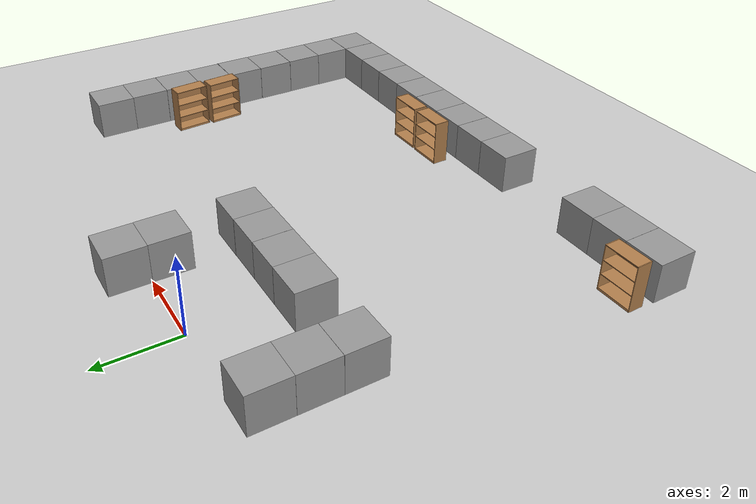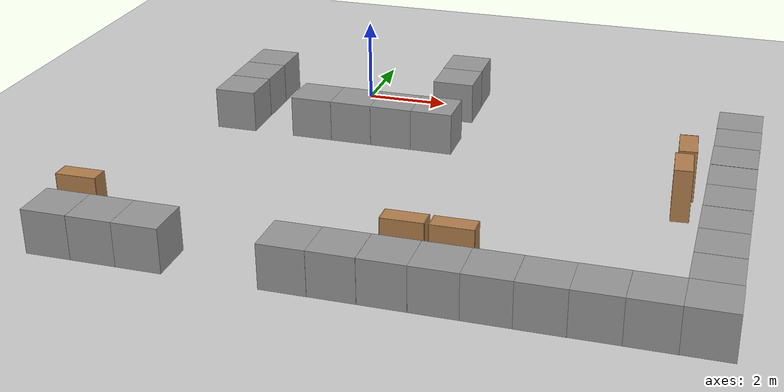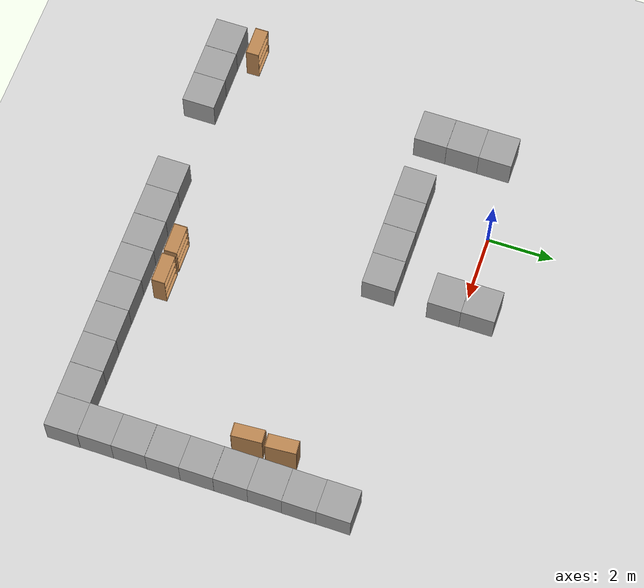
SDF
<sdf version="1.6">
 <world name="default">
  <model name="ground_plane">
   <static>1</static>
   <link name="link">
    <collision name="collision">
     <geometry><plane><normal>0 0 1</normal><size>100 100</size></plane></geometry>
     <surface><friction><ode><mu>100</mu><mu2>50</mu2></ode></friction></surface>
    </collision>
    <visual name="visual">
     <cast_shadows>0</cast_shadows>
     <geometry><plane><normal>0 0 1</normal><size>100 100</size></plane></geometry>
     <material>
      <script><uri>file://media/materials/scripts/gazebo.material</uri><name>Gazebo/Grey</name></script>
     </material>
    </visual>
   </link>
  </model>
  <model name="unit_box_0">
   <pose>9.4907 -9.4836 0.499802 -0.000397 0 0.000253</pose>
   <link name="link">
    <inertial>
     <mass>1</mass>
     <inertia>
      <ixx>0.166667</ixx>
      <ixy>0</ixy>
      <ixz>0</ixz>
      <iyy>0.166667</iyy>
      <iyz>0</iyz>
      <izz>0.166667</izz>
     </inertia>
    </inertial>
    <collision name="collision"><geometry><box><size>1 1 1</size></box></geometry></collision>
    <visual name="visual">
     <geometry><box><size>1 1 1</size></box></geometry>
     <material>
      <script><name>Gazebo/Grey</name><uri>file://media/materials/scripts/gazebo.material</uri></script>
     </material>
    </visual>
   </link>
  </model>
  <model name="unit_box_4">
   <pose>9.48293 -8.48368 0.49809 -0 0.0001 0.000262</pose>
   <link name="link">
    <inertial>
     <mass>1</mass>
     <inertia>
      <ixx>0.166667</ixx>
      <ixy>0</ixy>
      <ixz>0</ixz>
      <iyy>0.166667</iyy>
      <iyz>0</iyz>
      <izz>0.166667</izz>
     </inertia>
    </inertial>
    <collision name="collision"><geometry><box><size>1 1 1</size></box></geometry></collision>
    <visual name="visual">
     <geometry><box><size>1 1 1</size></box></geometry>
     <material>
      <script><name>Gazebo/Grey</name><uri>file://media/materials/scripts/gazebo.material</uri></script>
     </material>
    </visual>
   </link>
  </model>
  <model name="unit_box_5">
   <pose>9.48241 -7.48343 0.49912 0 -0 0.000141</pose>
   <link name="link">
    <inertial>
     <mass>1</mass>
     <inertia>
      <ixx>0.166667</ixx>
      <ixy>0</ixy>
      <ixz>0</ixz>
      <iyy>0.166667</iyy>
      <iyz>0</iyz>
      <izz>0.166667</izz>
     </inertia>
    </inertial>
    <collision name="collision"><geometry><box><size>1 1 1</size></box></geometry></collision>
    <visual name="visual">
     <geometry><box><size>1 1 1</size></box></geometry>
     <material>
      <script><name>Gazebo/Grey</name><uri>file://media/materials/scripts/gazebo.material</uri></script>
     </material>
    </visual>
   </link>
  </model>
  <model name="unit_box_6">
   <pose>9.48379 -6.48255 0.49608 0 -0 0.000235</pose>
   <link name="link">
    <inertial>
     <mass>1</mass>
     <inertia>
      <ixx>0.166667</ixx>
      <ixy>0</ixy>
      <ixz>0</ixz>
      <iyy>0.166667</iyy>
      <iyz>0</iyz>
      <izz>0.166667</izz>
     </inertia>
    </inertial>
    <collision name="collision"><geometry><box><size>1 1 1</size></box></geometry></collision>
    <visual name="visual">
     <geometry><box><size>1 1 1</size></box></geometry>
     <material>
      <script><name>Gazebo/Grey</name><uri>file://media/materials/scripts/gazebo.material</uri></script>
     </material>
    </visual>
   </link>
  </model>
  <model name="unit_box_7">
   <pose>9.48676 -5.48266 0.499798 0.000404 -0 0.000236</pose>
   <link name="link">
    <inertial>
     <mass>1</mass>
     <inertia>
      <ixx>0.166667</ixx>
      <ixy>0</ixy>
      <ixz>0</ixz>
      <iyy>0.166667</iyy>
      <iyz>0</iyz>
      <izz>0.166667</izz>
     </inertia>
    </inertial>
    <collision name="collision"><geometry><box><size>1 1 1</size></box></geometry></collision>
    <visual name="visual">
     <geometry><box><size>1 1 1</size></box></geometry>
     <material>
      <script><name>Gazebo/Grey</name><uri>file://media/materials/scripts/gazebo.material</uri></script>
     </material>
    </visual>
   </link>
  </model>
  <model name="unit_box_8">
   <pose>9.4832 -4.48215 0.49417 0.0001 -0 0.000181</pose>
   <link name="link">
    <inertial>
     <mass>1</mass>
     <inertia>
      <ixx>0.166667</ixx>
      <ixy>0</ixy>
      <ixz>0</ixz>
      <iyy>0.166667</iyy>
      <iyz>0</iyz>
      <izz>0.166667</izz>
     </inertia>
    </inertial>
    <collision name="collision"><geometry><box><size>1 1 1</size></box></geometry></collision>
    <visual name="visual">
     <geometry><box><size>1 1 1</size></box></geometry>
     <material>
      <script><name>Gazebo/Grey</name><uri>file://media/materials/scripts/gazebo.material</uri></script>
     </material>
    </visual>
   </link>
  </model>
  <model name="unit_box_9">
   <pose>9.48361 -3.48178 0.5 0 0 -6.6e-05</pose>
   <link name="link">
    <inertial>
     <mass>1</mass>
     <inertia>
      <ixx>0.166667</ixx>
      <ixy>0</ixy>
      <ixz>0</ixz>
      <iyy>0.166667</iyy>
      <iyz>0</iyz>
      <izz>0.166667</izz>
     </inertia>
    </inertial>
    <collision name="collision"><geometry><box><size>1 1 1</size></box></geometry></collision>
    <visual name="visual">
     <geometry><box><size>1 1 1</size></box></geometry>
     <material>
      <script><name>Gazebo/Grey</name><uri>file://media/materials/scripts/gazebo.material</uri></script>
     </material>
    </visual>
   </link>
  </model>
  <model name="unit_box_10">
   <pose>9.48795 -2.48152 0.49907 0 0.0001 -0.000301</pose>
   <link name="link">
    <inertial>
     <mass>1</mass>
     <inertia>
      <ixx>0.166667</ixx>
      <ixy>0</ixy>
      <ixz>0</ixz>
      <iyy>0.166667</iyy>
      <iyz>0</iyz>
      <izz>0.166667</izz>
     </inertia>
    </inertial>
    <collision name="collision"><geometry><box><size>1 1 1</size></box></geometry></collision>
    <visual name="visual">
     <geometry><box><size>1 1 1</size></box></geometry>
     <material>
      <script><name>Gazebo/Grey</name><uri>file://media/materials/scripts/gazebo.material</uri></script>
     </material>
    </visual>
   </link>
  </model>
  <model name="unit_box_11">
   <pose>9.48138 -1.4815 0.49907 0 -0.0001 -0.000273</pose>
   <link name="link">
    <inertial>
     <mass>1</mass>
     <inertia>
      <ixx>0.166667</ixx>
      <ixy>0</ixy>
      <ixz>0</ixz>
      <iyy>0.166667</iyy>
      <iyz>0</iyz>
      <izz>0.166667</izz>
     </inertia>
    </inertial>
    <collision name="collision"><geometry><box><size>1 1 1</size></box></geometry></collision>
    <visual name="visual">
     <geometry><box><size>1 1 1</size></box></geometry>
     <material>
      <script><name>Gazebo/Grey</name><uri>file://media/materials/scripts/gazebo.material</uri></script>
     </material>
    </visual>
   </link>
  </model>
  <model name="unit_box_20">
   <pose>8.49014 -9.48559 0.49912 0 -0 7.9e-05</pose>
   <link name="link">
    <inertial>
     <mass>1</mass>
     <inertia>
      <ixx>0.166667</ixx>
      <ixy>0</ixy>
      <ixz>0</ixz>
      <iyy>0.166667</iyy>
      <iyz>0</iyz>
      <izz>0.166667</izz>
     </inertia>
    </inertial>
    <collision name="collision"><geometry><box><size>1 1 1</size></box></geometry></collision>
    <visual name="visual">
     <geometry><box><size>1 1 1</size></box></geometry>
     <material>
      <script><name>Gazebo/Grey</name><uri>file://media/materials/scripts/gazebo.material</uri></script>
     </material>
    </visual>
   </link>
  </model>
  <model name="unit_box_21">
   <pose>7.48948 -9.48475 0.499757 -3e-06 -0.000475 0.000569</pose>
   <link name="link">
    <inertial>
     <mass>1</mass>
     <inertia>
      <ixx>0.166667</ixx>
      <ixy>0</ixy>
      <ixz>0</ixz>
      <iyy>0.166667</iyy>
      <iyz>0</iyz>
      <izz>0.166667</izz>
     </inertia>
    </inertial>
    <collision name="collision"><geometry><box><size>1 1 1</size></box></geometry></collision>
    <visual name="visual">
     <geometry><box><size>1 1 1</size></box></geometry>
     <material>
      <script><name>Gazebo/Grey</name><uri>file://media/materials/scripts/gazebo.material</uri></script>
     </material>
    </visual>
   </link>
  </model>
  <model name="unit_box_22">
   <pose>6.48943 -9.48753 0.499047 -1.5e-05 -0 -7.6e-05</pose>
   <link name="link">
    <inertial>
     <mass>1</mass>
     <inertia>
      <ixx>0.166667</ixx>
      <ixy>0</ixy>
      <ixz>0</ixz>
      <iyy>0.166667</iyy>
      <iyz>0</iyz>
      <izz>0.166667</izz>
     </inertia>
    </inertial>
    <collision name="collision"><geometry><box><size>1 1 1</size></box></geometry></collision>
    <visual name="visual">
     <geometry><box><size>1 1 1</size></box></geometry>
     <material>
      <script><name>Gazebo/Grey</name><uri>file://media/materials/scripts/gazebo.material</uri></script>
     </material>
    </visual>
   </link>
  </model>
  <model name="unit_box_23">
   <pose>5.48916 -9.48427 0.5 0 -0 0.000473</pose>
   <link name="link">
    <inertial>
     <mass>1</mass>
     <inertia>
      <ixx>0.166667</ixx>
      <ixy>0</ixy>
      <ixz>0</ixz>
      <iyy>0.166667</iyy>
      <iyz>0</iyz>
      <izz>0.166667</izz>
     </inertia>
    </inertial>
    <collision name="collision"><geometry><box><size>1 1 1</size></box></geometry></collision>
    <visual name="visual">
     <geometry><box><size>1 1 1</size></box></geometry>
     <material>
      <script><name>Gazebo/Grey</name><uri>file://media/materials/scripts/gazebo.material</uri></script>
     </material>
    </visual>
   </link>
  </model>
  <model name="unit_box_24">
   <pose>4.48912 -9.484 0.499802 -0.000397 -0 0.000461</pose>
   <link name="link">
    <inertial>
     <mass>1</mass>
     <inertia>
      <ixx>0.166667</ixx>
      <ixy>0</ixy>
      <ixz>0</ixz>
      <iyy>0.166667</iyy>
      <iyz>0</iyz>
      <izz>0.166667</izz>
     </inertia>
    </inertial>
    <collision name="collision"><geometry><box><size>1 1 1</size></box></geometry></collision>
    <visual name="visual">
     <geometry><box><size>1 1 1</size></box></geometry>
     <material>
      <script><name>Gazebo/Grey</name><uri>file://media/materials/scripts/gazebo.material</uri></script>
     </material>
    </visual>
   </link>
  </model>
  <model name="unit_box_25">
   <pose>3.48859 -9.48324 0.499798 -0.000404 0 -0.00034</pose>
   <link name="link">
    <inertial>
     <mass>1</mass>
     <inertia>
      <ixx>0.166667</ixx>
      <ixy>0</ixy>
      <ixz>0</ixz>
      <iyy>0.166667</iyy>
      <iyz>0</iyz>
      <izz>0.166667</izz>
     </inertia>
    </inertial>
    <collision name="collision"><geometry><box><size>1 1 1</size></box></geometry></collision>
    <visual name="visual">
     <geometry><box><size>1 1 1</size></box></geometry>
     <material>
      <script><name>Gazebo/Grey</name><uri>file://media/materials/scripts/gazebo.material</uri></script>
     </material>
    </visual>
   </link>
  </model>
  <model name="unit_box_26">
   <pose>2.4868 -9.48192 0.499798 -0.000404 -1e-06 -0.001681</pose>
   <link name="link">
    <inertial>
     <mass>1</mass>
     <inertia>
      <ixx>0.166667</ixx>
      <ixy>0</ixy>
      <ixz>0</ixz>
      <iyy>0.166667</iyy>
      <iyz>0</iyz>
      <izz>0.166667</izz>
     </inertia>
    </inertial>
    <collision name="collision"><geometry><box><size>1 1 1</size></box></geometry></collision>
    <visual name="visual">
     <geometry><box><size>1 1 1</size></box></geometry>
     <material>
      <script><name>Gazebo/Grey</name><uri>file://media/materials/scripts/gazebo.material</uri></script>
     </material>
    </visual>
   </link>
  </model>
  <model name="unit_box_27">
   <pose>1.48669 -9.4844 0.499798 -0.000404 -1e-06 -0.001478</pose>
   <link name="link">
    <inertial>
     <mass>1</mass>
     <inertia>
      <ixx>0.166667</ixx>
      <ixy>0</ixy>
      <ixz>0</ixz>
      <iyy>0.166667</iyy>
      <iyz>0</iyz>
      <izz>0.166667</izz>
     </inertia>
    </inertial>
    <collision name="collision"><geometry><box><size>1 1 1</size></box></geometry></collision>
    <visual name="visual">
     <geometry><box><size>1 1 1</size></box></geometry>
     <material>
      <script><name>Gazebo/Grey</name><uri>file://media/materials/scripts/gazebo.material</uri></script>
     </material>
    </visual>
   </link>
  </model>
  <model name="unit_box_33">
   <pose>-3.56687 -9.47793 0.499798 -0.000404 -0 -0.000941</pose>
   <link name="link">
    <inertial>
     <mass>1</mass>
     <inertia>
      <ixx>0.166667</ixx>
      <ixy>0</ixy>
      <ixz>0</ixz>
      <iyy>0.166667</iyy>
      <iyz>0</iyz>
      <izz>0.166667</izz>
     </inertia>
    </inertial>
    <collision name="collision"><geometry><box><size>1 1 1</size></box></geometry></collision>
    <visual name="visual">
     <geometry><box><size>1 1 1</size></box></geometry>
     <material>
      <script><name>Gazebo/Grey</name><uri>file://media/materials/scripts/gazebo.material</uri></script>
     </material>
    </visual>
   </link>
  </model>
  <model name="unit_box_34">
   <pose>-2.56595 -9.47872 0.499798 -0.000404 1e-06 0.000402</pose>
   <link name="link">
    <inertial>
     <mass>1</mass>
     <inertia>
      <ixx>0.166667</ixx>
      <ixy>0</ixy>
      <ixz>0</ixz>
      <iyy>0.166667</iyy>
      <iyz>0</iyz>
      <izz>0.166667</izz>
     </inertia>
    </inertial>
    <collision name="collision"><geometry><box><size>1 1 1</size></box></geometry></collision>
    <visual name="visual">
     <geometry><box><size>1 1 1</size></box></geometry>
     <material>
      <script><name>Gazebo/Grey</name><uri>file://media/materials/scripts/gazebo.material</uri></script>
     </material>
    </visual>
   </link>
  </model>
  <model name="unit_box_35">
   <pose>-1.56588 -9.47892 0.499798 -0.000404 1e-06 0.000371</pose>
   <link name="link">
    <inertial>
     <mass>1</mass>
     <inertia>
      <ixx>0.166667</ixx>
      <ixy>0</ixy>
      <ixz>0</ixz>
      <iyy>0.166667</iyy>
      <iyz>0</iyz>
      <izz>0.166667</izz>
     </inertia>
    </inertial>
    <collision name="collision"><geometry><box><size>1 1 1</size></box></geometry></collision>
    <visual name="visual">
     <geometry><box><size>1 1 1</size></box></geometry>
     <material>
      <script><name>Gazebo/Grey</name><uri>file://media/materials/scripts/gazebo.material</uri></script>
     </material>
    </visual>
   </link>
  </model>
  <model name="unit_box_36">
   <pose>-2.52432 -0.474629 0.49967 0 0.00066 9.9e-05</pose>
   <link name="link">
    <inertial>
     <mass>1</mass>
     <inertia>
      <ixx>0.166667</ixx>
      <ixy>0</ixy>
      <ixz>0</ixz>
      <iyy>0.166667</iyy>
      <iyz>0</iyz>
      <izz>0.166667</izz>
     </inertia>
    </inertial>
    <collision name="collision"><geometry><box><size>1 1 1</size></box></geometry></collision>
    <visual name="visual">
     <geometry><box><size>1 1 1</size></box></geometry>
     <material>
      <script><name>Gazebo/Grey</name><uri>file://media/materials/scripts/gazebo.material</uri></script>
     </material>
    </visual>
   </link>
  </model>
  <model name="unit_box_37">
   <pose>-2.52537 -1.47471 0.499707 -0.000587 -0 0.000263</pose>
   <link name="link">
    <inertial>
     <mass>1</mass>
     <inertia>
      <ixx>0.166667</ixx>
      <ixy>0</ixy>
      <ixz>0</ixz>
      <iyy>0.166667</iyy>
      <iyz>0</iyz>
      <izz>0.166667</izz>
     </inertia>
    </inertial>
    <collision name="collision"><geometry><box><size>1 1 1</size></box></geometry></collision>
    <visual name="visual">
     <geometry><box><size>1 1 1</size></box></geometry>
     <material>
      <script><name>Gazebo/Grey</name><uri>file://media/materials/scripts/gazebo.material</uri></script>
     </material>
    </visual>
   </link>
  </model>
  <model name="unit_box_38">
   <pose>-2.52546 -2.47558 0.49907 0.0001 0 -1e-06</pose>
   <link name="link">
    <inertial>
     <mass>1</mass>
     <inertia>
      <ixx>0.166667</ixx>
      <ixy>0</ixy>
      <ixz>0</ixz>
      <iyy>0.166667</iyy>
      <iyz>0</iyz>
      <izz>0.166667</izz>
     </inertia>
    </inertial>
    <collision name="collision"><geometry><box><size>1 1 1</size></box></geometry></collision>
    <visual name="visual">
     <geometry><box><size>1 1 1</size></box></geometry>
     <material>
      <script><name>Gazebo/Grey</name><uri>file://media/materials/scripts/gazebo.material</uri></script>
     </material>
    </visual>
   </link>
  </model>
  <model name="unit_box_41">
   <pose>-0.542163 -2.4746 0.499798 -0.000404 -0 -0.002313</pose>
   <link name="link">
    <inertial>
     <mass>1</mass>
     <inertia>
      <ixx>0.166667</ixx>
      <ixy>0</ixy>
      <ixz>0</ixz>
      <iyy>0.166667</iyy>
      <iyz>0</iyz>
      <izz>0.166667</izz>
     </inertia>
    </inertial>
    <collision name="collision"><geometry><box><size>1 1 1</size></box></geometry></collision>
    <visual name="visual">
     <geometry><box><size>1 1 1</size></box></geometry>
     <material>
      <script><name>Gazebo/Grey</name><uri>file://media/materials/scripts/gazebo.material</uri></script>
     </material>
    </visual>
   </link>
  </model>
  <model name="unit_box_42">
   <pose>0.458091 -2.47557 0.499798 -0.000404 -0 -0.002037</pose>
   <link name="link">
    <inertial>
     <mass>1</mass>
     <inertia>
      <ixx>0.166667</ixx>
      <ixy>0</ixy>
      <ixz>0</ixz>
      <iyy>0.166667</iyy>
      <iyz>0</iyz>
      <izz>0.166667</izz>
     </inertia>
    </inertial>
    <collision name="collision"><geometry><box><size>1 1 1</size></box></geometry></collision>
    <visual name="visual">
     <geometry><box><size>1 1 1</size></box></geometry>
     <material>
      <script><name>Gazebo/Grey</name><uri>file://media/materials/scripts/gazebo.material</uri></script>
     </material>
    </visual>
   </link>
  </model>
  <model name="unit_box_43">
   <pose>1.45857 -2.47753 0.499798 -0.000404 -0 -0.001832</pose>
   <link name="link">
    <inertial>
     <mass>1</mass>
     <inertia>
      <ixx>0.166667</ixx>
      <ixy>0</ixy>
      <ixz>0</ixz>
      <iyy>0.166667</iyy>
      <iyz>0</iyz>
      <izz>0.166667</izz>
     </inertia>
    </inertial>
    <collision name="collision"><geometry><box><size>1 1 1</size></box></geometry></collision>
    <visual name="visual">
     <geometry><box><size>1 1 1</size></box></geometry>
     <material>
      <script><name>Gazebo/Grey</name><uri>file://media/materials/scripts/gazebo.material</uri></script>
     </material>
    </visual>
   </link>
  </model>
  <model name="unit_box_44">
   <pose>2.45868 -2.47508 0.499798 -0.000404 -1e-06 -0.001954</pose>
   <link name="link">
    <inertial>
     <mass>1</mass>
     <inertia>
      <ixx>0.166667</ixx>
      <ixy>0</ixy>
      <ixz>0</ixz>
      <iyy>0.166667</iyy>
      <iyz>0</iyz>
      <izz>0.166667</izz>
     </inertia>
    </inertial>
    <collision name="collision"><geometry><box><size>1 1 1</size></box></geometry></collision>
    <visual name="visual">
     <geometry><box><size>1 1 1</size></box></geometry>
     <material>
      <script><name>Gazebo/Grey</name><uri>file://media/materials/scripts/gazebo.material</uri></script>
     </material>
    </visual>
   </link>
  </model>
  <model name="unit_box_45">
   <pose>2.47844 -0.493761 0.499798 0.000404 -0 0.002193</pose>
   <link name="link">
    <inertial>
     <mass>1</mass>
     <inertia>
      <ixx>0.166667</ixx>
      <ixy>0</ixy>
      <ixz>0</ixz>
      <iyy>0.166667</iyy>
      <iyz>0</iyz>
      <izz>0.166667</izz>
     </inertia>
    </inertial>
    <collision name="collision"><geometry><box><size>1 1 1</size></box></geometry></collision>
    <visual name="visual">
     <geometry><box><size>1 1 1</size></box></geometry>
     <material>
      <script><name>Gazebo/Grey</name><uri>file://media/materials/scripts/gazebo.material</uri></script>
     </material>
    </visual>
   </link>
  </model>
  <model name="unit_box_46">
   <pose>2.46928 0.506312 0.499798 0.000404 -0 0.002318</pose>
   <link name="link">
    <inertial>
     <mass>1</mass>
     <inertia>
      <ixx>0.166667</ixx>
      <ixy>0</ixy>
      <ixz>0</ixz>
      <iyy>0.166667</iyy>
      <iyz>0</iyz>
      <izz>0.166667</izz>
     </inertia>
    </inertial>
    <collision name="collision"><geometry><box><size>1 1 1</size></box></geometry></collision>
    <visual name="visual">
     <geometry><box><size>1 1 1</size></box></geometry>
     <material>
      <script><name>Gazebo/Grey</name><uri>file://media/materials/scripts/gazebo.material</uri></script>
     </material>
    </visual>
   </link>
  </model>
  <model name="bookshelf_0">
   <static>1</static>
   <link name="link">
    <inertial><mass>1</mass></inertial>
    <collision name="back">
     <pose>0 0.005 0.6 0 -0 0</pose>
     <geometry><box><size>0.9 0.01 1.2</size></box></geometry>
    </collision>
    <visual name="visual1">
     <pose>0 0.005 0.6 0 -0 0</pose>
     <geometry><box><size>0.9 0.01 1.2</size></box></geometry>
     <material>
      <script><uri>file://media/materials/scripts/gazebo.material</uri><name>Gazebo/Wood</name></script>
     </material>
    </visual>
    <collision name="left_side">
     <pose>0.45 -0.195 0.6 0 -0 0</pose>
     <geometry><box><size>0.02 0.4 1.2</size></box></geometry>
    </collision>
    <visual name="visual2">
     <pose>0.45 -0.195 0.6 0 -0 0</pose>
     <geometry><box><size>0.02 0.4 1.2</size></box></geometry>
     <material>
      <script><uri>file://media/materials/scripts/gazebo.material</uri><name>Gazebo/Wood</name></script>
     </material>
    </visual>
    <collision name="right_side">
     <pose>-0.45 -0.195 0.6 0 -0 0</pose>
     <geometry><box><size>0.02 0.4 1.2</size></box></geometry>
    </collision>
    <visual name="visual3">
     <pose>-0.45 -0.195 0.6 0 -0 0</pose>
     <geometry><box><size>0.02 0.4 1.2</size></box></geometry>
     <material>
      <script><uri>file://media/materials/scripts/gazebo.material</uri><name>Gazebo/Wood</name></script>
     </material>
    </visual>
    <collision name="bottom">
     <pose>0 -0.195 0.03 0 -0 0</pose>
     <geometry><box><size>0.88 0.4 0.06</size></box></geometry>
    </collision>
    <visual name="visual4">
     <pose>0 -0.195 0.03 0 -0 0</pose>
     <geometry><box><size>0.88 0.4 0.06</size></box></geometry>
     <material>
      <script><uri>file://media/materials/scripts/gazebo.material</uri><name>Gazebo/Wood</name></script>
     </material>
    </visual>
    <collision name="top">
     <pose>0 -0.195 1.19 0 -0 0</pose>
     <geometry><box><size>0.88 0.4 0.02</size></box></geometry>
    </collision>
    <visual name="visual5">
     <pose>0 -0.195 1.19 0 -0 0</pose>
     <geometry><box><size>0.88 0.4 0.02</size></box></geometry>
     <material>
      <script><uri>file://media/materials/scripts/gazebo.material</uri><name>Gazebo/Wood</name></script>
     </material>
    </visual>
    <collision name="low_shelf">
     <pose>0 -0.195 0.43 0 -0 0</pose>
     <geometry><box><size>0.88 0.4 0.02</size></box></geometry>
    </collision>
    <visual name="visual6">
     <pose>0 -0.195 0.43 0 -0 0</pose>
     <geometry><box><size>0.88 0.4 0.02</size></box></geometry>
     <material>
      <script><uri>file://media/materials/scripts/gazebo.material</uri><name>Gazebo/Wood</name></script>
     </material>
    </visual>
    <collision name="high_shelf">
     <pose>0 -0.195 0.8 0 -0 0</pose>
     <geometry><box><size>0.88 0.4 0.02</size></box></geometry>
    </collision>
    <visual name="visual7">
     <pose>0 -0.195 0.8 0 -0 0</pose>
     <geometry><box><size>0.88 0.4 0.02</size></box></geometry>
     <material>
      <script><uri>file://media/materials/scripts/gazebo.material</uri><name>Gazebo/Wood</name></script>
     </material>
    </visual>
   </link>
   <pose>-3.56515 -8.67621 0 0 0 -3.13319</pose>
  </model>
  <model name="bookshelf_0_clone_0">
   <static>1</static>
   <link name="link">
    <inertial><mass>1</mass></inertial>
    <collision name="back">
     <pose>0 0.005 0.6 0 -0 0</pose>
     <geometry><box><size>0.9 0.01 1.2</size></box></geometry>
    </collision>
    <visual name="visual1">
     <pose>0 0.005 0.6 0 -0 0</pose>
     <geometry><box><size>0.9 0.01 1.2</size></box></geometry>
     <material>
      <script><uri>file://media/materials/scripts/gazebo.material</uri><name>Gazebo/Wood</name></script>
     </material>
    </visual>
    <collision name="left_side">
     <pose>0.45 -0.195 0.6 0 -0 0</pose>
     <geometry><box><size>0.02 0.4 1.2</size></box></geometry>
    </collision>
    <visual name="visual2">
     <pose>0.45 -0.195 0.6 0 -0 0</pose>
     <geometry><box><size>0.02 0.4 1.2</size></box></geometry>
     <material>
      <script><uri>file://media/materials/scripts/gazebo.material</uri><name>Gazebo/Wood</name></script>
     </material>
    </visual>
    <collision name="right_side">
     <pose>-0.45 -0.195 0.6 0 -0 0</pose>
     <geometry><box><size>0.02 0.4 1.2</size></box></geometry>
    </collision>
    <visual name="visual3">
     <pose>-0.45 -0.195 0.6 0 -0 0</pose>
     <geometry><box><size>0.02 0.4 1.2</size></box></geometry>
     <material>
      <script><uri>file://media/materials/scripts/gazebo.material</uri><name>Gazebo/Wood</name></script>
     </material>
    </visual>
    <collision name="bottom">
     <pose>0 -0.195 0.03 0 -0 0</pose>
     <geometry><box><size>0.88 0.4 0.06</size></box></geometry>
    </collision>
    <visual name="visual4">
     <pose>0 -0.195 0.03 0 -0 0</pose>
     <geometry><box><size>0.88 0.4 0.06</size></box></geometry>
     <material>
      <script><uri>file://media/materials/scripts/gazebo.material</uri><name>Gazebo/Wood</name></script>
     </material>
    </visual>
    <collision name="top">
     <pose>0 -0.195 1.19 0 -0 0</pose>
     <geometry><box><size>0.88 0.4 0.02</size></box></geometry>
    </collision>
    <visual name="visual5">
     <pose>0 -0.195 1.19 0 -0 0</pose>
     <geometry><box><size>0.88 0.4 0.02</size></box></geometry>
     <material>
      <script><uri>file://media/materials/scripts/gazebo.material</uri><name>Gazebo/Wood</name></script>
     </material>
    </visual>
    <collision name="low_shelf">
     <pose>0 -0.195 0.43 0 -0 0</pose>
     <geometry><box><size>0.88 0.4 0.02</size></box></geometry>
    </collision>
    <visual name="visual6">
     <pose>0 -0.195 0.43 0 -0 0</pose>
     <geometry><box><size>0.88 0.4 0.02</size></box></geometry>
     <material>
      <script><uri>file://media/materials/scripts/gazebo.material</uri><name>Gazebo/Wood</name></script>
     </material>
    </visual>
    <collision name="high_shelf">
     <pose>0 -0.195 0.8 0 -0 0</pose>
     <geometry><box><size>0.88 0.4 0.02</size></box></geometry>
    </collision>
    <visual name="visual7">
     <pose>0 -0.195 0.8 0 -0 0</pose>
     <geometry><box><size>0.88 0.4 0.02</size></box></geometry>
     <material>
      <script><uri>file://media/materials/scripts/gazebo.material</uri><name>Gazebo/Wood</name></script>
     </material>
    </visual>
   </link>
   <pose>3.4903 -8.67621 0 0 0 -3.13319</pose>
  </model>
  <model name="bookshelf_0_clone_1">
   <static>1</static>
   <link name="link">
    <inertial><mass>1</mass></inertial>
    <collision name="back">
     <pose>0 0.005 0.6 0 -0 0</pose>
     <geometry><box><size>0.9 0.01 1.2</size></box></geometry>
    </collision>
    <visual name="visual1">
     <pose>0 0.005 0.6 0 -0 0</pose>
     <geometry><box><size>0.9 0.01 1.2</size></box></geometry>
     <material>
      <script><uri>file://media/materials/scripts/gazebo.material</uri><name>Gazebo/Wood</name></script>
     </material>
    </visual>
    <collision name="left_side">
     <pose>0.45 -0.195 0.6 0 -0 0</pose>
     <geometry><box><size>0.02 0.4 1.2</size></box></geometry>
    </collision>
    <visual name="visual2">
     <pose>0.45 -0.195 0.6 0 -0 0</pose>
     <geometry><box><size>0.02 0.4 1.2</size></box></geometry>
     <material>
      <script><uri>file://media/materials/scripts/gazebo.material</uri><name>Gazebo/Wood</name></script>
     </material>
    </visual>
    <collision name="right_side">
     <pose>-0.45 -0.195 0.6 0 -0 0</pose>
     <geometry><box><size>0.02 0.4 1.2</size></box></geometry>
    </collision>
    <visual name="visual3">
     <pose>-0.45 -0.195 0.6 0 -0 0</pose>
     <geometry><box><size>0.02 0.4 1.2</size></box></geometry>
     <material>
      <script><uri>file://media/materials/scripts/gazebo.material</uri><name>Gazebo/Wood</name></script>
     </material>
    </visual>
    <collision name="bottom">
     <pose>0 -0.195 0.03 0 -0 0</pose>
     <geometry><box><size>0.88 0.4 0.06</size></box></geometry>
    </collision>
    <visual name="visual4">
     <pose>0 -0.195 0.03 0 -0 0</pose>
     <geometry><box><size>0.88 0.4 0.06</size></box></geometry>
     <material>
      <script><uri>file://media/materials/scripts/gazebo.material</uri><name>Gazebo/Wood</name></script>
     </material>
    </visual>
    <collision name="top">
     <pose>0 -0.195 1.19 0 -0 0</pose>
     <geometry><box><size>0.88 0.4 0.02</size></box></geometry>
    </collision>
    <visual name="visual5">
     <pose>0 -0.195 1.19 0 -0 0</pose>
     <geometry><box><size>0.88 0.4 0.02</size></box></geometry>
     <material>
      <script><uri>file://media/materials/scripts/gazebo.material</uri><name>Gazebo/Wood</name></script>
     </material>
    </visual>
    <collision name="low_shelf">
     <pose>0 -0.195 0.43 0 -0 0</pose>
     <geometry><box><size>0.88 0.4 0.02</size></box></geometry>
    </collision>
    <visual name="visual6">
     <pose>0 -0.195 0.43 0 -0 0</pose>
     <geometry><box><size>0.88 0.4 0.02</size></box></geometry>
     <material>
      <script><uri>file://media/materials/scripts/gazebo.material</uri><name>Gazebo/Wood</name></script>
     </material>
    </visual>
    <collision name="high_shelf">
     <pose>0 -0.195 0.8 0 -0 0</pose>
     <geometry><box><size>0.88 0.4 0.02</size></box></geometry>
    </collision>
    <visual name="visual7">
     <pose>0 -0.195 0.8 0 -0 0</pose>
     <geometry><box><size>0.88 0.4 0.02</size></box></geometry>
     <material>
      <script><uri>file://media/materials/scripts/gazebo.material</uri><name>Gazebo/Wood</name></script>
     </material>
    </visual>
   </link>
   <pose>4.49156 -8.67621 0 0 0 -3.13319</pose>
  </model>
  <model name="bookshelf_1">
   <static>1</static>
   <link name="link">
    <inertial><mass>1</mass></inertial>
    <collision name="back">
     <pose>0 0.005 0.6 0 -0 0</pose>
     <geometry><box><size>0.9 0.01 1.2</size></box></geometry>
    </collision>
    <visual name="visual1">
     <pose>0 0.005 0.6 0 -0 0</pose>
     <geometry><box><size>0.9 0.01 1.2</size></box></geometry>
     <material>
      <script><uri>file://media/materials/scripts/gazebo.material</uri><name>Gazebo/Wood</name></script>
     </material>
    </visual>
    <collision name="left_side">
     <pose>0.45 -0.195 0.6 0 -0 0</pose>
     <geometry><box><size>0.02 0.4 1.2</size></box></geometry>
    </collision>
    <visual name="visual2">
     <pose>0.45 -0.195 0.6 0 -0 0</pose>
     <geometry><box><size>0.02 0.4 1.2</size></box></geometry>
     <material>
      <script><uri>file://media/materials/scripts/gazebo.material</uri><name>Gazebo/Wood</name></script>
     </material>
    </visual>
    <collision name="right_side">
     <pose>-0.45 -0.195 0.6 0 -0 0</pose>
     <geometry><box><size>0.02 0.4 1.2</size></box></geometry>
    </collision>
    <visual name="visual3">
     <pose>-0.45 -0.195 0.6 0 -0 0</pose>
     <geometry><box><size>0.02 0.4 1.2</size></box></geometry>
     <material>
      <script><uri>file://media/materials/scripts/gazebo.material</uri><name>Gazebo/Wood</name></script>
     </material>
    </visual>
    <collision name="bottom">
     <pose>0 -0.195 0.03 0 -0 0</pose>
     <geometry><box><size>0.88 0.4 0.06</size></box></geometry>
    </collision>
    <visual name="visual4">
     <pose>0 -0.195 0.03 0 -0 0</pose>
     <geometry><box><size>0.88 0.4 0.06</size></box></geometry>
     <material>
      <script><uri>file://media/materials/scripts/gazebo.material</uri><name>Gazebo/Wood</name></script>
     </material>
    </visual>
    <collision name="top">
     <pose>0 -0.195 1.19 0 -0 0</pose>
     <geometry><box><size>0.88 0.4 0.02</size></box></geometry>
    </collision>
    <visual name="visual5">
     <pose>0 -0.195 1.19 0 -0 0</pose>
     <geometry><box><size>0.88 0.4 0.02</size></box></geometry>
     <material>
      <script><uri>file://media/materials/scripts/gazebo.material</uri><name>Gazebo/Wood</name></script>
     </material>
    </visual>
    <collision name="low_shelf">
     <pose>0 -0.195 0.43 0 -0 0</pose>
     <geometry><box><size>0.88 0.4 0.02</size></box></geometry>
    </collision>
    <visual name="visual6">
     <pose>0 -0.195 0.43 0 -0 0</pose>
     <geometry><box><size>0.88 0.4 0.02</size></box></geometry>
     <material>
      <script><uri>file://media/materials/scripts/gazebo.material</uri><name>Gazebo/Wood</name></script>
     </material>
    </visual>
    <collision name="high_shelf">
     <pose>0 -0.195 0.8 0 -0 0</pose>
     <geometry><box><size>0.88 0.4 0.02</size></box></geometry>
    </collision>
    <visual name="visual7">
     <pose>0 -0.195 0.8 0 -0 0</pose>
     <geometry><box><size>0.88 0.4 0.02</size></box></geometry>
     <material>
      <script><uri>file://media/materials/scripts/gazebo.material</uri><name>Gazebo/Wood</name></script>
     </material>
    </visual>
   </link>
   <pose>8.66172 -3.46014 0 0 0 -1.5</pose>
  </model>
  <model name="bookshelf_1_clone">
   <static>1</static>
   <link name="link">
    <inertial><mass>1</mass></inertial>
    <collision name="back">
     <pose>0 0.005 0.6 0 -0 0</pose>
     <geometry><box><size>0.9 0.01 1.2</size></box></geometry>
    </collision>
    <visual name="visual1">
     <pose>0 0.005 0.6 0 -0 0</pose>
     <geometry><box><size>0.9 0.01 1.2</size></box></geometry>
     <material>
      <script><uri>file://media/materials/scripts/gazebo.material</uri><name>Gazebo/Wood</name></script>
     </material>
    </visual>
    <collision name="left_side">
     <pose>0.45 -0.195 0.6 0 -0 0</pose>
     <geometry><box><size>0.02 0.4 1.2</size></box></geometry>
    </collision>
    <visual name="visual2">
     <pose>0.45 -0.195 0.6 0 -0 0</pose>
     <geometry><box><size>0.02 0.4 1.2</size></box></geometry>
     <material>
      <script><uri>file://media/materials/scripts/gazebo.material</uri><name>Gazebo/Wood</name></script>
     </material>
    </visual>
    <collision name="right_side">
     <pose>-0.45 -0.195 0.6 0 -0 0</pose>
     <geometry><box><size>0.02 0.4 1.2</size></box></geometry>
    </collision>
    <visual name="visual3">
     <pose>-0.45 -0.195 0.6 0 -0 0</pose>
     <geometry><box><size>0.02 0.4 1.2</size></box></geometry>
     <material>
      <script><uri>file://media/materials/scripts/gazebo.material</uri><name>Gazebo/Wood</name></script>
     </material>
    </visual>
    <collision name="bottom">
     <pose>0 -0.195 0.03 0 -0 0</pose>
     <geometry><box><size>0.88 0.4 0.06</size></box></geometry>
    </collision>
    <visual name="visual4">
     <pose>0 -0.195 0.03 0 -0 0</pose>
     <geometry><box><size>0.88 0.4 0.06</size></box></geometry>
     <material>
      <script><uri>file://media/materials/scripts/gazebo.material</uri><name>Gazebo/Wood</name></script>
     </material>
    </visual>
    <collision name="top">
     <pose>0 -0.195 1.19 0 -0 0</pose>
     <geometry><box><size>0.88 0.4 0.02</size></box></geometry>
    </collision>
    <visual name="visual5">
     <pose>0 -0.195 1.19 0 -0 0</pose>
     <geometry><box><size>0.88 0.4 0.02</size></box></geometry>
     <material>
      <script><uri>file://media/materials/scripts/gazebo.material</uri><name>Gazebo/Wood</name></script>
     </material>
    </visual>
    <collision name="low_shelf">
     <pose>0 -0.195 0.43 0 -0 0</pose>
     <geometry><box><size>0.88 0.4 0.02</size></box></geometry>
    </collision>
    <visual name="visual6">
     <pose>0 -0.195 0.43 0 -0 0</pose>
     <geometry><box><size>0.88 0.4 0.02</size></box></geometry>
     <material>
      <script><uri>file://media/materials/scripts/gazebo.material</uri><name>Gazebo/Wood</name></script>
     </material>
    </visual>
    <collision name="high_shelf">
     <pose>0 -0.195 0.8 0 -0 0</pose>
     <geometry><box><size>0.88 0.4 0.02</size></box></geometry>
    </collision>
    <visual name="visual7">
     <pose>0 -0.195 0.8 0 -0 0</pose>
     <geometry><box><size>0.88 0.4 0.02</size></box></geometry>
     <material>
      <script><uri>file://media/materials/scripts/gazebo.material</uri><name>Gazebo/Wood</name></script>
     </material>
    </visual>
   </link>
   <pose>8.66172 -4.46019 0 0 0 -1.5</pose>
  </model>
 </world>
</sdf>
